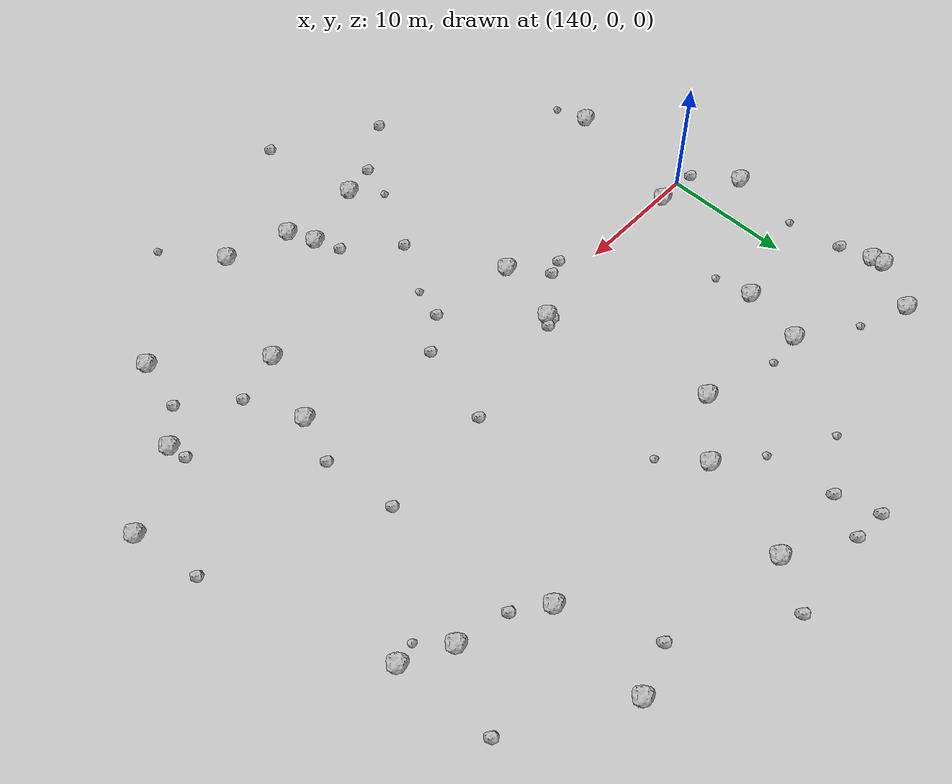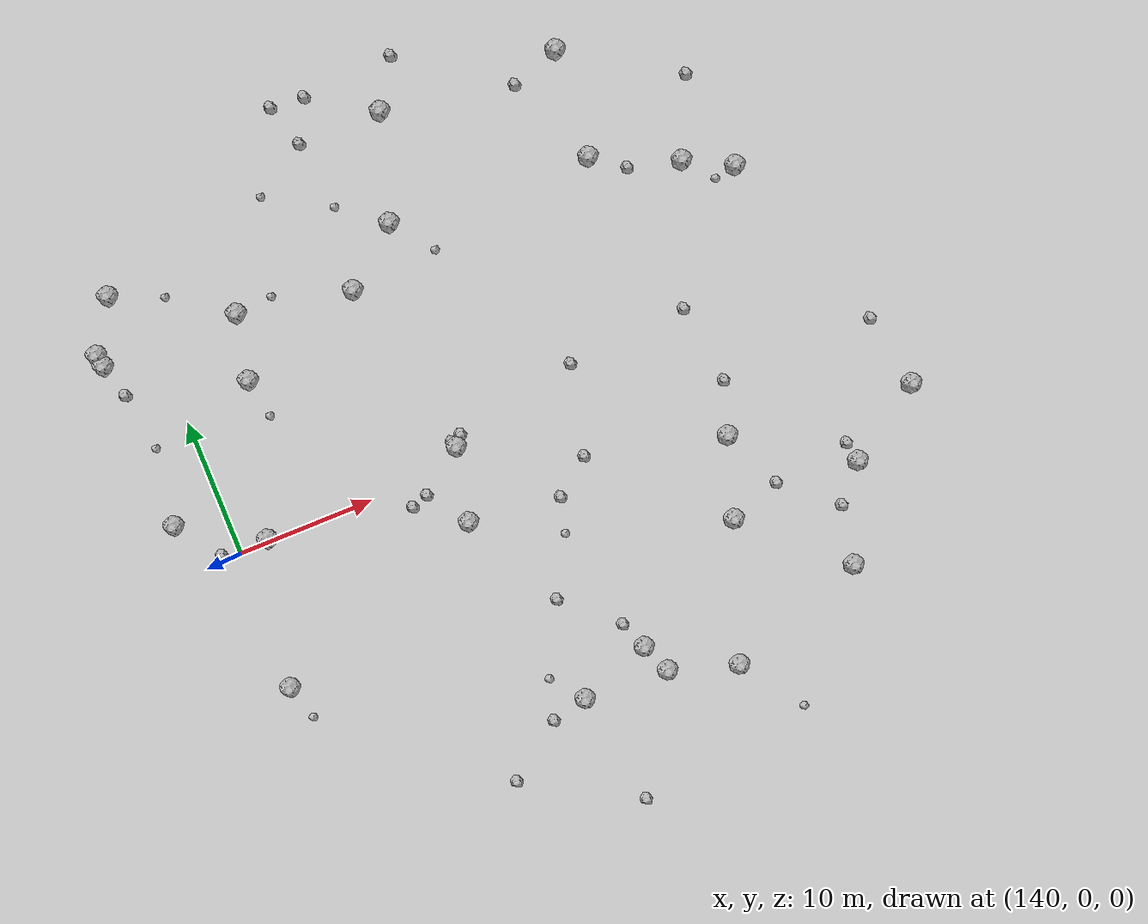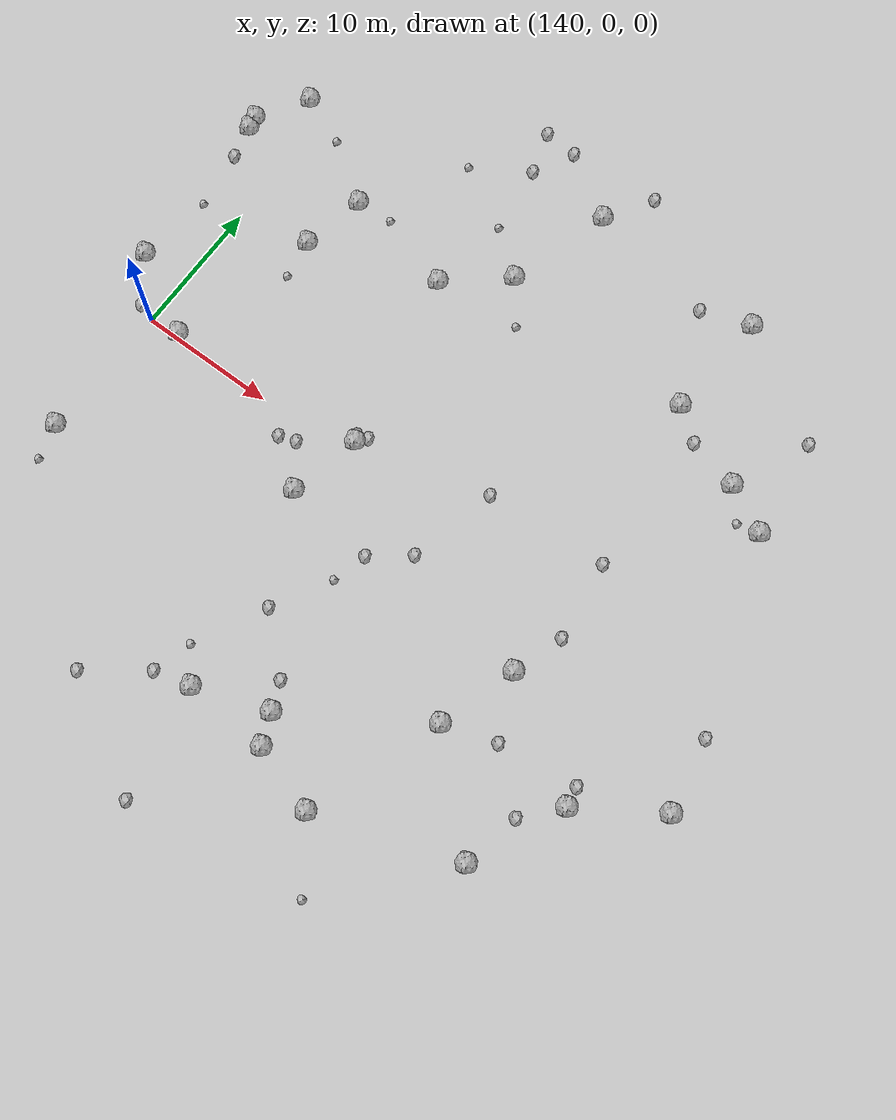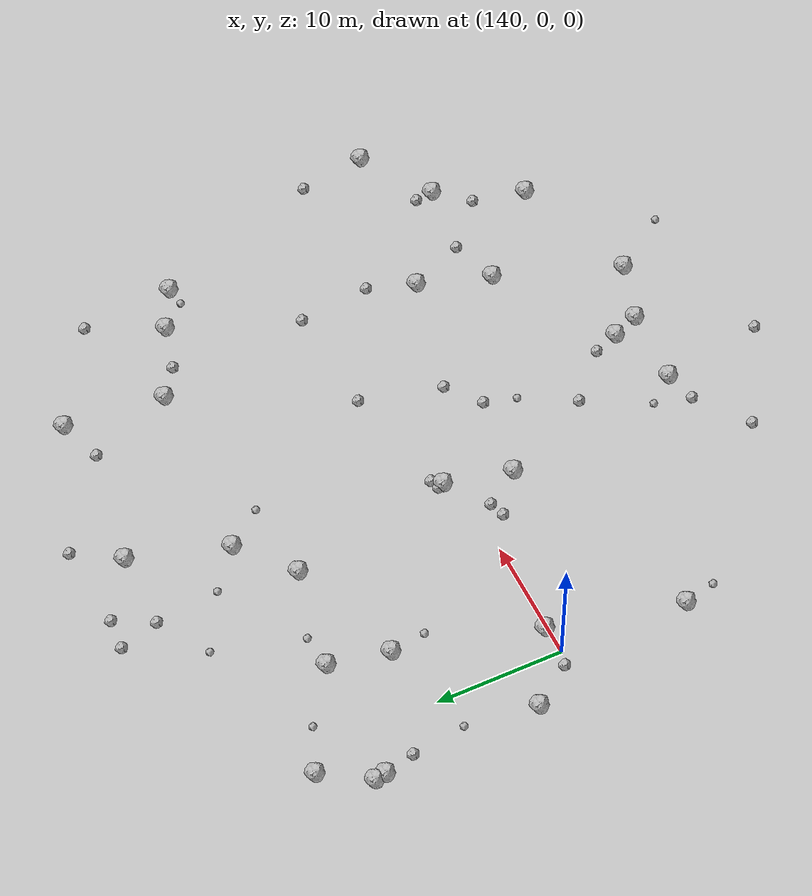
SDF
<sdf version="1.6">
 <world name="default">
  <include><uri>model://sun</uri></include>
  <model name="rock1_4_1">
   <include><uri>model://rock1</uri><pose>179.81453747304616 -16.996090269546524 0.5 0 0 0</pose></include>
  </model>
  <model name="rock1_4_2">
   <include><uri>model://rock1</uri><pose>145.23185346945868 11.177479967347509 0.5 0 0 0</pose></include>
  </model>
  <model name="rock1_4_3">
   <include><uri>model://rock1</uri><pose>163.95625073275943 -16.75709365704607 0.5 0 0 0</pose></include>
  </model>
  <model name="rock1_4_4">
   <include><uri>model://rock1</uri><pose>182.8120757278792 12.251931270026098 0.5 0 0 0</pose></include>
  </model>
  <model name="rock1_4_5">
   <include><uri>model://rock1</uri><pose>155.83278814084855 -3.9616707294164826 0.5 0 0 0</pose></include>
  </model>
  <model name="rock1_4_6">
   <include><uri>model://rock1</uri><pose>188.46727610873535 -6.716917025443735 0.5 0 0 0</pose></include>
  </model>
  <model name="rock1_4_7">
   <include><uri>model://rock1</uri><pose>179.4667519810779 14.013858831004967 0.5 0 0 0</pose></include>
  </model>
  <model name="rock1_4_8">
   <include><uri>model://rock1</uri><pose>158.71718674055978 -18.573825935877565 0.5 0 0 0</pose></include>
  </model>
  <model name="rock1_4_9">
   <include><uri>model://rock1</uri><pose>164.8547375845867 -18.9134458511788 0.5 0 0 0</pose></include>
  </model>
  <model name="rock1_4_10">
   <include><uri>model://rock1</uri><pose>158.63803065164166 17.728338881335198 0.5 0 0 0</pose></include>
  </model>
  <model name="rock1_4_11">
   <include><uri>model://rock1</uri><pose>169.68506090379447 -20.44645949716277 0.5 0 0 0</pose></include>
  </model>
  <model name="rock1_4_12">
   <include><uri>model://rock1</uri><pose>174.16143152188255 24.635465932863582 0.5 0 0 0</pose></include>
  </model>
  <model name="rock1_4_13">
   <include><uri>model://rock1</uri><pose>146.22182388324637 15.865705183584481 0.5 0 0 0</pose></include>
  </model>
  <model name="rock1_4_14">
   <include><uri>model://rock1</uri><pose>157.0383344498033 1.26872060213217 0.5 0 0 0</pose></include>
  </model>
  <model name="rock1_4_15">
   <include><uri>model://rock1</uri><pose>139.81555049886833 -9.994208542680411 0.5 0 0 0</pose></include>
  </model>
  <model name="rock1_4_16">
   <include><uri>model://rock1</uri><pose>182.89251264125016 -10.34021379787174 0.5 0 0 0</pose></include>
  </model>
  <model name="rock1_4_17">
   <include><uri>model://rock1</uri><pose>142.25439949457697 0.28166815009831225 0.5 0 0 0</pose></include>
  </model>
  <model name="rock1_4_18">
   <include><uri>model://rock1</uri><pose>154.48142371477232 14.282998812855581 0.5 0 0 0</pose></include>
  </model>
  <model name="rock1_4_19">
   <include><uri>model://rock1</uri><pose>175.06225553450875 -5.219115191557417 0.5 0 0 0</pose></include>
  </model>
  <model name="rock1_4_20">
   <include><uri>model://rock1</uri><pose>173.4338012593703 16.737943295341616 0.5 0 0 0</pose></include>
  </model>
  <model name="rock1_4_21">
   <include><uri>model://rock1</uri><pose>136.14421246708386 15.951137294409662 0.5 0 0 0</pose></include>
  </model>
  <model name="rock1_4_22">
   <include><uri>model://rock1</uri><pose>161.0168380196506 25.296325735950028 0.5 0 0 0</pose></include>
  </model>
  <model name="rock1_4_23">
   <include><uri>model://rock1</uri><pose>135.98615832971115 16.849706173528887 0.5 0 0 0</pose></include>
  </model>
  <model name="rock1_4_24">
   <include><uri>model://rock1</uri><pose>173.23163305493932 -10.835143038359178 0.5 0 0 0</pose></include>
  </model>
  <model name="rock1_4_25">
   <include><uri>model://rock1</uri><pose>136.5115039725608 3.6388892519327385 0.5 0 0 0</pose></include>
  </model>
  <model name="rock1_4_26">
   <include><uri>model://rock1</uri><pose>138.2898429923058 20.421978311598963 0.5 0 0 0</pose></include>
  </model>
  <model name="rock2_4_0">
   <include><uri>model://rock2</uri><pose>175.5923644147701 4.230565763101879 0.3 0 0 0</pose></include>
  </model>
  <model name="rock2_4_1">
   <include><uri>model://rock2</uri><pose>182.0862647615044 19.595126345807557 0.3 0 0 0</pose></include>
  </model>
  <model name="rock2_4_2">
   <include><uri>model://rock2</uri><pose>153.895349107263 28.515890395900215 0.3 0 0 0</pose></include>
  </model>
  <model name="rock2_4_3">
   <include><uri>model://rock2</uri><pose>163.14157812562394 -14.769034530130467 0.3 0 0 0</pose></include>
  </model>
  <model name="rock2_4_4">
   <include><uri>model://rock2</uri><pose>138.77072582708504 0.4333428485511668 0.3 0 0 0</pose></include>
  </model>
  <model name="rock2_4_5">
   <include><uri>model://rock2</uri><pose>154.8241586835678 25.362089887155136 0.3 0 0 0</pose></include>
  </model>
  <model name="rock2_4_6">
   <include><uri>model://rock2</uri><pose>182.64804380814365 -8.903781380284833 0.3 0 0 0</pose></include>
  </model>
  <model name="rock2_4_7">
   <include><uri>model://rock2</uri><pose>163.1713566446331 28.72865930933871 0.3 0 0 0</pose></include>
  </model>
  <model name="rock2_4_8">
   <include><uri>model://rock2</uri><pose>159.4989017398596 -11.392505857385245 0.3 0 0 0</pose></include>
  </model>
  <model name="rock2_4_9">
   <include><uri>model://rock2</uri><pose>156.38909915114166 28.302727256565866 0.3 0 0 0</pose></include>
  </model>
  <model name="rock2_4_10">
   <include><uri>model://rock2</uri><pose>187.56562851904465 -1.4039715429651025 0.3 0 0 0</pose></include>
  </model>
  <model name="rock2_4_11">
   <include><uri>model://rock2</uri><pose>160.01240788264104 -26.76246588759893 0.3 0 0 0</pose></include>
  </model>
  <model name="rock2_4_12">
   <include><uri>model://rock2</uri><pose>156.07993152897873 -19.218196742645475 0.3 0 0 0</pose></include>
  </model>
  <model name="rock2_4_13">
   <include><uri>model://rock2</uri><pose>175.7080700911815 15.00322223007609 0.3 0 0 0</pose></include>
  </model>
  <model name="rock2_4_14">
   <include><uri>model://rock2</uri><pose>162.49293517039132 -4.795857814274832 0.3 0 0 0</pose></include>
  </model>
  <model name="rock2_4_15">
   <include><uri>model://rock2</uri><pose>153.78829220948143 -1.1103593411206418 0.3 0 0 0</pose></include>
  </model>
  <model name="rock2_4_16">
   <include><uri>model://rock2</uri><pose>165.12378768005064 -2.7543794206996637 0.3 0 0 0</pose></include>
  </model>
  <model name="rock2_4_17">
   <include><uri>model://rock2</uri><pose>136.708483752699 13.492095574297217 0.3 0 0 0</pose></include>
  </model>
  <model name="rock2_4_18">
   <include><uri>model://rock2</uri><pose>176.9908606293128 -9.630475593766935 0.3 0 0 0</pose></include>
  </model>
  <model name="rock2_4_19">
   <include><uri>model://rock2</uri><pose>152.02761273006936 -22.187407874108896 0.3 0 0 0</pose></include>
  </model>
  <model name="rock2_4_20">
   <include><uri>model://rock2</uri><pose>180.6733600126313 -12.848607007373431 0.3 0 0 0</pose></include>
  </model>
  <model name="rock2_4_21">
   <include><uri>model://rock2</uri><pose>157.61109758119534 1.9784387946408515 0.3 0 0 0</pose></include>
  </model>
  <model name="rock2_4_22">
   <include><uri>model://rock2</uri><pose>176.29833677405497 -1.5292144421598692 0.3 0 0 0</pose></include>
  </model>
  <model name="rock2_4_23">
   <include><uri>model://rock2</uri><pose>170.55306280335844 23.464702624086634 0.3 0 0 0</pose></include>
  </model>
  <model name="rock2_4_24">
   <include><uri>model://rock2</uri><pose>152.55431664851633 -1.515259293725336 0.3 0 0 0</pose></include>
  </model>
  <model name="rock2_4_25">
   <include><uri>model://rock2</uri><pose>166.7162529557002 3.660007382562881 0.3 0 0 0</pose></include>
  </model>
  <model name="rock2_4_26">
   <include><uri>model://rock2</uri><pose>156.82045545399674 1.7286793232899882 0.3 0 0 0</pose></include>
  </model>
  <model name="rock3_4_0">
   <include><uri>model://rock3</uri><pose>141.8898084864401 18.85447809050111 0.2 0 0 0</pose></include>
  </model>
  <model name="rock3_4_1">
   <include><uri>model://rock3</uri><pose>181.21392440735832 11.905078308634728 0.2 0 0 0</pose></include>
  </model>
  <model name="rock3_4_2">
   <include><uri>model://rock3</uri><pose>172.81518035111873 -24.984487966207286 0.2 0 0 0</pose></include>
  </model>
  <model name="rock3_4_3">
   <include><uri>model://rock3</uri><pose>160.88845474949463 14.72652782148672 0.2 0 0 0</pose></include>
  </model>
  <model name="rock3_4_4">
   <include><uri>model://rock3</uri><pose>156.86582847188993 -16.432540160124166 0.2 0 0 0</pose></include>
  </model>
  <model name="rock3_4_5">
   <include><uri>model://rock3</uri><pose>150.85410690275174 22.879852541776174 0.2 0 0 0</pose></include>
  </model>
  <model name="rock3_4_6">
   <include><uri>model://rock3</uri><pose>155.4350151899683 20.24478604697157 0.2 0 0 0</pose></include>
  </model>
  <model name="rock3_4_7">
   <include><uri>model://rock3</uri><pose>137.27695784066887 9.16179532705683 0.2 0 0 0</pose></include>
  </model>
  <model name="rock3_4_8">
   <include><uri>model://rock3</uri><pose>148.88387427294896 16.059445920410013 0.2 0 0 0</pose></include>
  </model>
  <model name="rock3_4_9">
   <include><uri>model://rock3</uri><pose>161.8056051395282 -7.361098684692195 0.2 0 0 0</pose></include>
  </model>
  <model name="rock3_4_10">
   <include><uri>model://rock3</uri><pose>145.61510642922926 8.255660500284108 0.2 0 0 0</pose></include>
  </model>
  <model name="rock3_4_11">
   <include><uri>model://rock3</uri><pose>140.41499526748228 -12.608265152472221 0.2 0 0 0</pose></include>
  </model>
 </world>
</sdf>
